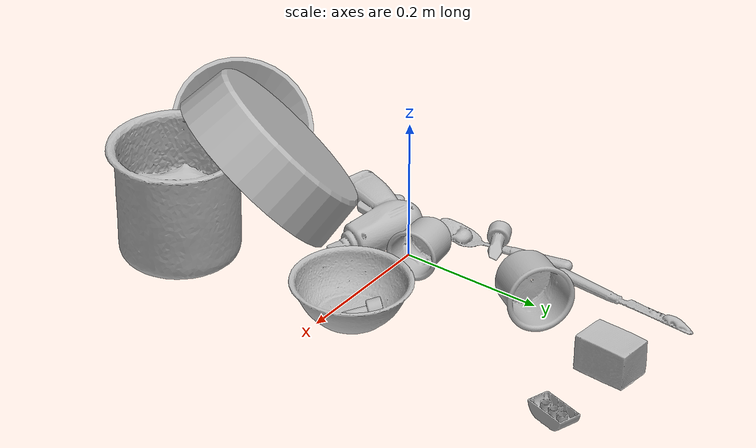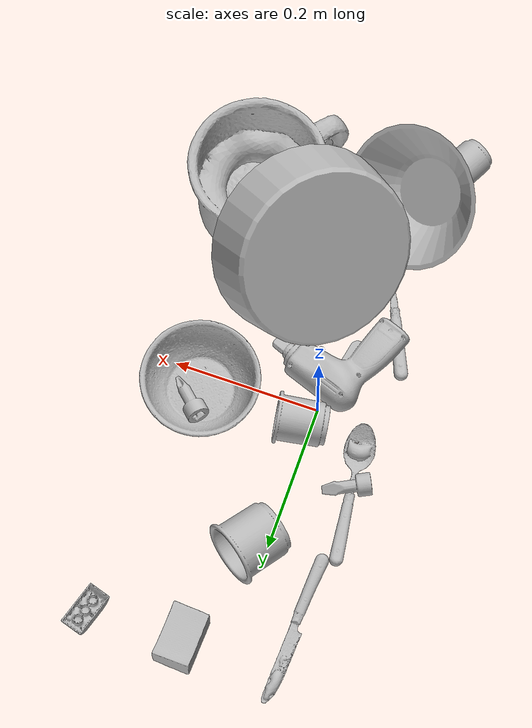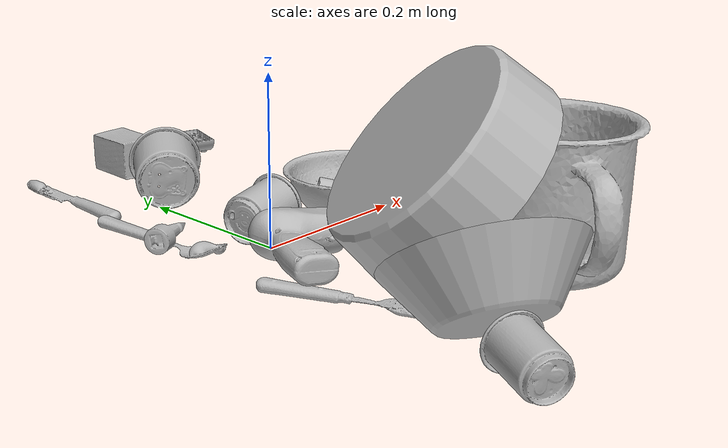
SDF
<sdf version="1.4">
  <world name="default">
    <light name="light1" type="point">
      <pose>0 0 1 0 0 0</pose>
      <diffuse>3 3 3 1</diffuse>
      <specular>3 3 3 1</specular>
    </light>
    <light name="light2" type="point">
      <pose>0 0.5 2 0 0 0</pose>
      <diffuse>1 1 1 1</diffuse>
      <specular>1 1 1 1</specular>
    </light>
    <light name="light3" type="point">
      <pose>0 0.5 2 0 0 0</pose>
      <diffuse>3 3 3 1</diffuse>
      <specular>3 3 3 1</specular>
    </light>
    <scene>
      <ambient>0.7 0.7 0.7</ambient>
    </scene>
    <model name="plate1">
      <link name="link_plate1">
        <collision name="default">
          <geometry>
            <mesh>
              <uri>model://pan_tefal/collision_meshes/collision.obj</uri>
              <scale>1.0 1.0 1.0</scale>
            </mesh>
          </geometry>
          <surface>
            <friction>
              <ode>
                <mu>0.5</mu>
                <mu2>0.5</mu2>
              </ode>
            </friction>
          <contact>
        <ode>
            <max_vel>0</max_vel>
            <min_depth>0.0001</min_depth>
            <kp>1e8</kp>
        </ode>
    </contact></surface>
        </collision>
        <visual name="default">
          <geometry>
            <mesh>
              <uri>model://pan_tefal/visual_meshes/visual.dae</uri>
              <scale>1.0 1.0 1.0</scale>
            </mesh>
          </geometry>
        </visual>
        <inertial>
          <mass>1.356081485748291</mass>
          <pose>-0.00018001878925133497 3.2792810088722035e-05 -0.008514934219419956 0.000819032333381865 -0.0003301471985614655 -0.33185384828338066</pose>
          <inertia>
            <ixx>0.009360965</ixx>
            <iyy>0.009421317</iyy>
            <izz>0.017231734</izz>
            <ixy>0</ixy>
            <ixz>0</ixz>
            <iyz>0</iyz>
          </inertia>
        </inertial>
      </link>
      <pose>0.06604114919900894 -0.17417612671852112 0.12400954216718674 2.420330717342692 0.45778166143223636 1.4119804159202949</pose>
    </model>
    <model name="cup1">
      <link name="link_cup1">
        <collision name="default">
          <geometry>
            <mesh>
              <uri>model://mug/collision_meshes/collision.obj</uri>
              <scale>2.0 2.0 2.0</scale>
            </mesh>
          </geometry>
          <surface>
            <friction>
              <ode>
                <mu>0.5</mu>
                <mu2>0.5</mu2>
              </ode>
            </friction>
          <contact>
        <ode>
            <max_vel>0</max_vel>
            <min_depth>0.0001</min_depth>
            <kp>1e8</kp>
        </ode>
    </contact></surface>
        </collision>
        <visual name="default">
          <geometry>
            <mesh>
              <uri>model://mug/visual_meshes/visual.dae</uri>
              <scale>2.0 2.0 2.0</scale>
            </mesh>
          </geometry>
        </visual>
        <inertial>
          <mass>1.425228476524353</mass>
          <pose>0.019143342971801758 0.0016286519821733236 -0.021894657984375954 -0.12983169455958588 0.08737743422724535 0.05507285753370488</pose>
          <inertia>
            <ixx>0.005662833</ixx>
            <iyy>0.0063250507</iyy>
            <izz>0.0073150056</izz>
            <ixy>0</ixy>
            <ixz>0</ixz>
            <iyz>0</iyz>
          </inertia>
        </inertial>
      </link>
      <pose>0.15818773210048676 -0.2685319483280182 0.08189902454614639 -8.978893923725288e-06 2.0415538476237944e-05 0.91861408519024</pose>
    </model>
    <model name="silverware1">
      <link name="link_silverware1">
        <collision name="default">
          <geometry>
            <mesh>
              <uri>model://spoon/collision_meshes/collision.obj</uri>
              <scale>1.0 1.0 1.0</scale>
            </mesh>
          </geometry>
          <surface>
            <friction>
              <ode>
                <mu>0.5</mu>
                <mu2>0.5</mu2>
              </ode>
            </friction>
          <contact>
        <ode>
            <max_vel>0</max_vel>
            <min_depth>0.0001</min_depth>
            <kp>1e8</kp>
        </ode>
    </contact></surface>
        </collision>
        <visual name="default">
          <geometry>
            <mesh>
              <uri>model://spoon/visual_meshes/visual.dae</uri>
              <scale>1.0 1.0 1.0</scale>
            </mesh>
          </geometry>
        </visual>
        <inertial>
          <mass>0.031423501670360565</mass>
          <pose>-0.005526318680495024 -0.0016034176805987954 -0.000727165665011853 0.035217765619004186 -0.03906586018731898 0.006150610672177042</pose>
          <inertia>
            <ixx>1.7478262e-06</ixx>
            <iyy>0.0001195654</iyy>
            <izz>0.000120427336</izz>
            <ixy>0</ixy>
            <ixz>0</ixz>
            <iyz>0</iyz>
          </inertia>
        </inertial>
      </link>
      <pose>-0.07705151289701462 0.09803596138954163 0.00838528387248516 0.006748598230600034 0.02689322860388377 -1.4436414632668564</pose>
    </model>
    <model name="silverware2">
      <link name="link_silverware2">
        <collision name="default">
          <geometry>
            <mesh>
              <uri>model://fork/collision_meshes/collision.obj</uri>
              <scale>1.0 1.0 1.0</scale>
            </mesh>
          </geometry>
          <surface>
            <friction>
              <ode>
                <mu>0.5</mu>
                <mu2>0.5</mu2>
              </ode>
            </friction>
          <contact>
        <ode>
            <max_vel>0</max_vel>
            <min_depth>0.0001</min_depth>
            <kp>1e8</kp>
        </ode>
    </contact></surface>
        </collision>
        <visual name="default">
          <geometry>
            <mesh>
              <uri>model://fork/visual_meshes/visual.dae</uri>
              <scale>1.0 1.0 1.0</scale>
            </mesh>
          </geometry>
        </visual>
        <inertial>
          <mass>0.02368462271988392</mass>
          <pose>-0.02957003191113472 0.00046588238910771906 0.00032188621116802096 -0.013550757689210725 -0.010977831639922976 0.014453892765665301</pose>
          <inertia>
            <ixx>8.3028004e-07</ixx>
            <iyy>6.183376e-05</iyy>
            <izz>6.220513e-05</izz>
            <ixy>0</ixy>
            <ixz>0</ixz>
            <iyz>0</iyz>
          </inertia>
        </inertial>
      </link>
      <pose>-0.051486536860466 -0.16480472683906555 0.007444058079272509 -3.0634562487040276 0.002868115087728415 -1.1487721614730009</pose>
    </model>
    <model name="silverware3">
      <link name="link_silverware3">
        <collision name="default">
          <geometry>
            <mesh>
              <uri>model://knife/collision_meshes/collision.obj</uri>
              <scale>1.0 1.0 1.0</scale>
            </mesh>
          </geometry>
          <surface>
            <friction>
              <ode>
                <mu>0.5</mu>
                <mu2>0.5</mu2>
              </ode>
            </friction>
          <contact>
        <ode>
            <max_vel>0</max_vel>
            <min_depth>0.0001</min_depth>
            <kp>1e8</kp>
        </ode>
    </contact></surface>
        </collision>
        <visual name="default">
          <geometry>
            <mesh>
              <uri>model://knife/visual_meshes/visual.dae</uri>
              <scale>1.0 1.0 1.0</scale>
            </mesh>
          </geometry>
        </visual>
        <inertial>
          <mass>0.023530498147010803</mass>
          <pose>-0.023785250261425972 0.0015275124460458755 5.062020863988437e-05 0.07305757972864607 0.01724841573343299 -0.007409825279630946</pose>
          <inertia>
            <ixx>6.678909e-07</ixx>
            <iyy>9.040038e-05</iyy>
            <izz>9.0615475e-05</izz>
            <ixy>0</ixy>
            <ixz>0</ixz>
            <iyz>0</iyz>
          </inertia>
        </inertial>
      </link>
      <pose>-0.07103520631790161 0.2928391695022583 0.006015694700181484 2.967302509245594 0.025131567708688858 1.5330480494380327</pose>
    </model>
    <model name="cup3">
      <link name="link_cup3">
        <collision name="default">
          <geometry>
            <mesh>
              <uri>model://b_cups/collision_meshes/collision.obj</uri>
              <scale>1.0 1.0 1.0</scale>
            </mesh>
          </geometry>
          <surface>
            <friction>
              <ode>
                <mu>0.5</mu>
                <mu2>0.5</mu2>
              </ode>
            </friction>
          <contact>
        <ode>
            <max_vel>0</max_vel>
            <min_depth>0.0001</min_depth>
            <kp>1e8</kp>
        </ode>
    </contact></surface>
        </collision>
        <visual name="default">
          <geometry>
            <mesh>
              <uri>model://b_cups/visual_meshes/visual.dae</uri>
              <scale>1.0 1.0 1.0</scale>
            </mesh>
          </geometry>
        </visual>
        <inertial>
          <mass>0.033049143850803375</mass>
          <pose>0.0005182002205401659 0.001805859967134893 -0.0013381808530539274 0.11356265792291019 0.03872585472979472 -0.3457023826899558</pose>
          <inertia>
            <ixx>2.1632983e-05</ixx>
            <iyy>2.1222275e-05</iyy>
            <izz>1.8203747e-05</izz>
            <ixy>0</ixy>
            <ixz>0</ixz>
            <iyz>0</iyz>
          </inertia>
        </inertial>
      </link>
      <pose>-0.07500411570072174 -0.38312405347824097 0.027831977233290672 -1.4797222583008331 0.2543128348487004 -0.44880244665260133</pose>
    </model>
    <model name="cup4">
      <link name="link_cup4">
        <collision name="default">
          <geometry>
            <mesh>
              <uri>model://h_cups/collision_meshes/collision.obj</uri>
              <scale>1.0 1.0 1.0</scale>
            </mesh>
          </geometry>
          <surface>
            <friction>
              <ode>
                <mu>0.5</mu>
                <mu2>0.5</mu2>
              </ode>
            </friction>
          <contact>
        <ode>
            <max_vel>0</max_vel>
            <min_depth>0.0001</min_depth>
            <kp>1e8</kp>
        </ode>
    </contact></surface>
        </collision>
        <visual name="default">
          <geometry>
            <mesh>
              <uri>model://h_cups/visual_meshes/visual.dae</uri>
              <scale>1.0 1.0 1.0</scale>
            </mesh>
          </geometry>
        </visual>
        <inertial>
          <mass>0.11347958445549011</mass>
          <pose>-2.7030910132452846e-05 0.00023018615320324898 -0.0018405403243377805 -0.02436217983877791 0.06545222634893223 0.12885210457354207</pose>
          <inertia>
            <ixx>0.0001465536</ixx>
            <iyy>0.00014480477</iyy>
            <izz>0.00015369456</izz>
            <ixy>0</ixy>
            <ixz>0</ixz>
            <iyz>0</iyz>
          </inertia>
        </inertial>
      </link>
      <pose>0.018986070528626442 0.2074267417192459 0.04211333021521568 -1.4640995049525305 0.00027357854961340304 -0.613052626860313</pose>
    </model>
    <model name="cup5">
      <link name="link_cup5">
        <collision name="default">
          <geometry>
            <mesh>
              <uri>model://d_cups/collision_meshes/collision.obj</uri>
              <scale>1.0 1.0 1.0</scale>
            </mesh>
          </geometry>
          <surface>
            <friction>
              <ode>
                <mu>0.5</mu>
                <mu2>0.5</mu2>
              </ode>
            </friction>
          <contact>
        <ode>
            <max_vel>0</max_vel>
            <min_depth>0.0001</min_depth>
            <kp>1e8</kp>
        </ode>
    </contact></surface>
        </collision>
        <visual name="default">
          <geometry>
            <mesh>
              <uri>model://d_cups/visual_meshes/visual.dae</uri>
              <scale>1.0 1.0 1.0</scale>
            </mesh>
          </geometry>
        </visual>
        <inertial>
          <mass>0.039110079407691956</mass>
          <pose>0.0008068050956353545 0.0019117392366752028 -0.0022666517179459333 0.24011224021147495 -0.247107611945545 0.594295747375292</pose>
          <inertia>
            <ixx>3.2744327e-05</ixx>
            <iyy>3.2649565e-05</iyy>
            <izz>2.9639183e-05</izz>
            <ixy>0</ixy>
            <ixz>0</ixz>
            <iyz>0</iyz>
          </inertia>
        </inertial>
      </link>
      <pose>0.012542732991278172 0.029687905684113503 0.03258587047457695 -1.4751005811504145 -0.43744510267551495 -1.4320071935032292</pose>
    </model>
    <model name="bowl1">
      <link name="link_bowl1">
        <collision name="default">
          <geometry>
            <mesh>
              <uri>model://bowl/collision_meshes/collision.obj</uri>
              <scale>1.0 1.0 1.0</scale>
            </mesh>
          </geometry>
          <surface>
            <friction>
              <ode>
                <mu>0.5</mu>
                <mu2>0.5</mu2>
              </ode>
            </friction>
          <contact>
        <ode>
            <max_vel>0</max_vel>
            <min_depth>0.0001</min_depth>
            <kp>1e8</kp>
        </ode>
    </contact></surface>
        </collision>
        <visual name="default">
          <geometry>
            <mesh>
              <uri>model://bowl/visual_meshes/visual.dae</uri>
              <scale>1.0 1.0 1.0</scale>
            </mesh>
          </geometry>
        </visual>
        <inertial>
          <mass>0.04740063101053238</mass>
          <pose>0.00020445372501853853 -0.001030205050483346 -0.000804265437182039 -0.015764138065403298 0.014546740803255881 0.7140373892972721</pose>
          <inertia>
            <ixx>0.00010888298</ixx>
            <iyy>0.000106450105</iyy>
            <izz>0.00018317858</izz>
            <ixy>0</ixy>
            <ixz>0</ixz>
            <iyz>0</iyz>
          </inertia>
        </inertial>
      </link>
      <pose>0.15669861435890198 0.023583048954606056 0.02778000384569168 2.483712630944542e-07 3.235602307970973e-07 1.0966239525866657</pose>
    </model>
    <model name="bowl2">
      <link name="link_bowl2">
        <collision name="default">
          <geometry>
            <mesh>
              <uri>model://bowl_a/collision_meshes/collision.obj</uri>
              <scale>1.0 1.0 1.0</scale>
            </mesh>
          </geometry>
          <surface>
            <friction>
              <ode>
                <mu>0.5</mu>
                <mu2>0.5</mu2>
              </ode>
            </friction>
          <contact>
        <ode>
            <max_vel>0</max_vel>
            <min_depth>0.0001</min_depth>
            <kp>1e8</kp>
        </ode>
    </contact></surface>
        </collision>
        <visual name="default">
          <geometry>
            <mesh>
              <uri>model://bowl_a/visual_meshes/visual.dae</uri>
              <scale>1.0 1.0 1.0</scale>
            </mesh>
          </geometry>
        </visual>
        <inertial>
          <mass>0.4596928358078003</mass>
          <pose>0.0002786756376735866 4.731212538899854e-05 -0.001376529224216938 -0.0009805332698969178 -0.0010938264579112213 -0.1912378887702168</pose>
          <inertia>
            <ixx>0.0013087663</ixx>
            <iyy>0.0013168014</iyy>
            <izz>0.002327691</izz>
            <ixy>0</ixy>
            <ixz>0</ixz>
            <iyz>0</iyz>
          </inertia>
        </inertial>
      </link>
      <pose>-0.03598165512084961 -0.3147631585597992 0.058069903403520584 0.596705650616796 -0.37947989721196734 3.0775329356934495</pose>
    </model>
    <model name="toy1">
      <link name="link_toy1">
        <collision name="default">
          <geometry>
            <mesh>
              <uri>model://d_toy_airplane/collision_meshes/collision.obj</uri>
              <scale>1.0 1.0 1.0</scale>
            </mesh>
          </geometry>
          <surface>
            <friction>
              <ode>
                <mu>0.5</mu>
                <mu2>0.5</mu2>
              </ode>
            </friction>
          <contact>
        <ode>
            <max_vel>0</max_vel>
            <min_depth>0.0001</min_depth>
            <kp>1e8</kp>
        </ode>
    </contact></surface>
        </collision>
        <visual name="default">
          <geometry>
            <mesh>
              <uri>model://d_toy_airplane/visual_meshes/visual.dae</uri>
              <scale>1.0 1.0 1.0</scale>
            </mesh>
          </geometry>
        </visual>
        <inertial>
          <mass>0.017302583903074265</mass>
          <pose>9.410295751877129e-05 -5.809326466987841e-05 -0.011728093028068542 0.00026573120399734447 0.004679044314999465 0.5192011935173154</pose>
          <inertia>
            <ixx>5.1869783e-06</ixx>
            <iyy>5.190892e-06</iyy>
            <izz>1.5659823e-06</izz>
            <ixy>0</ixy>
            <ixz>0</ixz>
            <iyz>0</iyz>
          </inertia>
        </inertial>
      </link>
      <pose>0.16777443885803223 0.04206128418445587 0.013796993531286716 2.3518653033822754 -1.2652119692709138 0.04307021821062652</pose>
    </model>
    <model name="toy2">
      <link name="link_toy2">
        <collision name="default">
          <geometry>
            <mesh>
              <uri>model://b_toy_airplane/collision_meshes/collision.obj</uri>
              <scale>1.0 1.0 1.0</scale>
            </mesh>
          </geometry>
          <surface>
            <friction>
              <ode>
                <mu>0.5</mu>
                <mu2>0.5</mu2>
              </ode>
            </friction>
          <contact>
        <ode>
            <max_vel>0</max_vel>
            <min_depth>0.0001</min_depth>
            <kp>1e8</kp>
        </ode>
    </contact></surface>
        </collision>
        <visual name="default">
          <geometry>
            <mesh>
              <uri>model://b_toy_airplane/visual_meshes/visual.dae</uri>
              <scale>1.0 1.0 1.0</scale>
            </mesh>
          </geometry>
        </visual>
        <inertial>
          <mass>0.45341360569000244</mass>
          <pose>0.00508136535063386 0.004015584941953421 0.00954306498169899 -0.04001809497736226 -0.04022180630889015 -0.560150289687741</pose>
          <inertia>
            <ixx>0.0008417707</ixx>
            <iyy>0.00033646397</iyy>
            <izz>0.0010472467</izz>
            <ixy>0</ixy>
            <ixz>0</ixz>
            <iyz>0</iyz>
          </inertia>
        </inertial>
      </link>
      <pose>-0.01699150912463665 -0.0593838132917881 0.01953156106173992 0.05734508200550041 0.11563570183921591 -0.3652704586456042</pose>
    </model>
    <model name="toy3">
      <link name="link_toy3">
        <collision name="default">
          <geometry>
            <mesh>
              <uri>model://a_lego_duplo/collision_meshes/collision.obj</uri>
              <scale>1.0 1.0 1.0</scale>
            </mesh>
          </geometry>
          <surface>
            <friction>
              <ode>
                <mu>0.5</mu>
                <mu2>0.5</mu2>
              </ode>
            </friction>
          <contact>
        <ode>
            <max_vel>0</max_vel>
            <min_depth>0.0001</min_depth>
            <kp>1e8</kp>
        </ode>
    </contact></surface>
        </collision>
        <visual name="default">
          <geometry>
            <mesh>
              <uri>model://a_lego_duplo/visual_meshes/visual.dae</uri>
              <scale>1.0 1.0 1.0</scale>
            </mesh>
          </geometry>
        </visual>
        <inertial>
          <mass>0.019445955753326416</mass>
          <pose>-0.00011337668547639623 0.0001851754350354895 0.00036926064058206975 -0.014116968054253443 -0.00012565964371363686 6.142473690124929e-05</pose>
          <inertia>
            <ixx>2.4931269e-06</ixx>
            <iyy>5.58515e-06</iyy>
            <izz>6.9184516e-06</izz>
            <ixy>0</ixy>
            <ixz>0</ixz>
            <iyz>0</iyz>
          </inertia>
        </inertial>
      </link>
      <pose>0.19545097649097443 0.36236342787742615 0.012124703265726566 -3.141306498831983 -0.015582984026382567 1.2664489332284083</pose>
    </model>
    <model name="toy4">
      <link name="link_toy4">
        <collision name="default">
          <geometry>
            <mesh>
              <uri>model://foam_brick/collision_meshes/collision.obj</uri>
              <scale>1.0 1.0 1.0</scale>
            </mesh>
          </geometry>
          <surface>
            <friction>
              <ode>
                <mu>0.5</mu>
                <mu2>0.5</mu2>
              </ode>
            </friction>
          <contact>
        <ode>
            <max_vel>0</max_vel>
            <min_depth>0.0001</min_depth>
            <kp>1e8</kp>
        </ode>
    </contact></surface>
        </collision>
        <visual name="default">
          <geometry>
            <mesh>
              <uri>model://foam_brick/visual_meshes/visual.dae</uri>
              <scale>1.0 1.0 1.0</scale>
            </mesh>
          </geometry>
        </visual>
        <inertial>
          <mass>0.18476375937461853</mass>
          <pose>-0.00025224717683158815 0.0003458433784544468 -0.00025321010616607964 -0.2940193708875024 0.01727444338713918 -0.0007449870082442464</pose>
          <inertia>
            <ixx>8.070827e-05</ixx>
            <iyy>0.00012885487</iyy>
            <izz>0.00013049248</izz>
            <ixy>0</ixy>
            <ixz>0</ixz>
            <iyz>0</iyz>
          </inertia>
        </inertial>
      </link>
      <pose>0.06353821605443954 0.35807013511657715 0.025496846064925194 3.1325084074966187 0.0066072318148461635 1.524805321428453</pose>
    </model>
    <model name="toy5">
      <link name="link_toy5">
        <collision name="default">
          <geometry>
            <mesh>
              <uri>model://e_toy_airplane/collision_meshes/collision.obj</uri>
              <scale>1.0 1.0 1.0</scale>
            </mesh>
          </geometry>
          <surface>
            <friction>
              <ode>
                <mu>0.5</mu>
                <mu2>0.5</mu2>
              </ode>
            </friction>
          <contact>
        <ode>
            <max_vel>0</max_vel>
            <min_depth>0.0001</min_depth>
            <kp>1e8</kp>
        </ode>
    </contact></surface>
        </collision>
        <visual name="default">
          <geometry>
            <mesh>
              <uri>model://e_toy_airplane/visual_meshes/visual.dae</uri>
              <scale>1.0 1.0 1.0</scale>
            </mesh>
          </geometry>
        </visual>
        <inertial>
          <mass>0.01085815578699112</mass>
          <pose>0.00011740455374820158 -2.248299279017374e-05 -0.011187206953763962 0.005518501127689679 0.009228289957601814 0.15041514141603637</pose>
          <inertia>
            <ixx>3.3140323e-06</ixx>
            <iyy>3.2801318e-06</iyy>
            <izz>9.959974e-07</izz>
            <ixy>0</ixy>
            <ixz>0</ixz>
            <iyz>0</iyz>
          </inertia>
        </inertial>
      </link>
      <pose>-0.07165059447288513 0.09052272886037827 0.014734447002410889 -1.6468869077533546 1.024487934670485 -1.1673695495718315</pose>
    </model>
  <physics type="ode">
      <max_contacts>50</max_contacts>
      <ode>
        <solver>
          <type>quick</type>
          <iters>75</iters>
        </solver>
        <constraints>
          <contact_max_correcting_vel>0</contact_max_correcting_vel>
          <contact_surface_layer>0</contact_surface_layer>
        </constraints>
      </ode>
    </physics></world>
</sdf>
